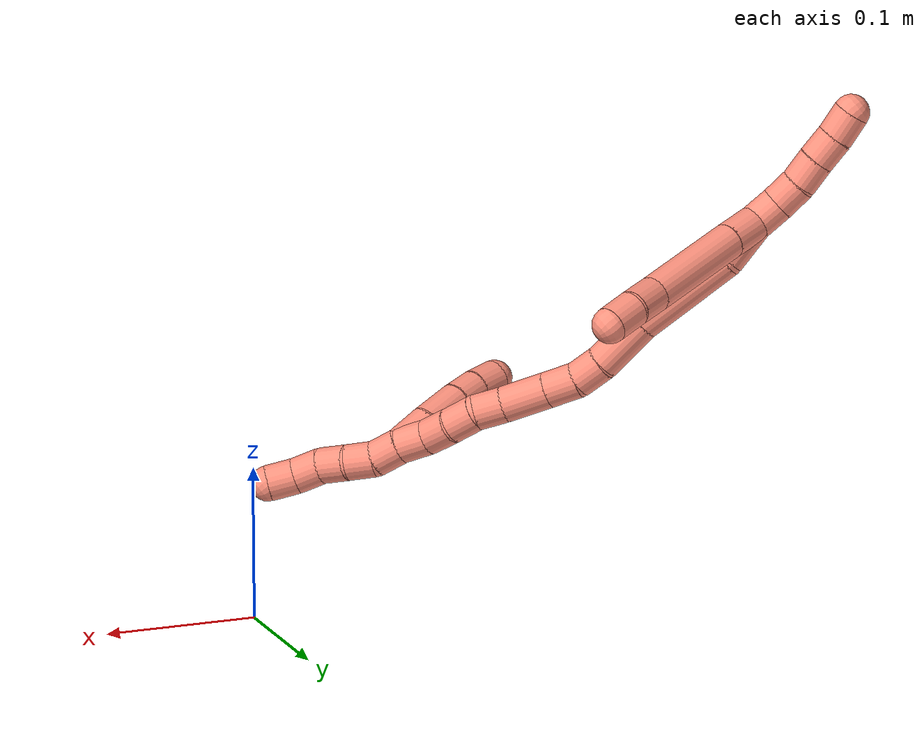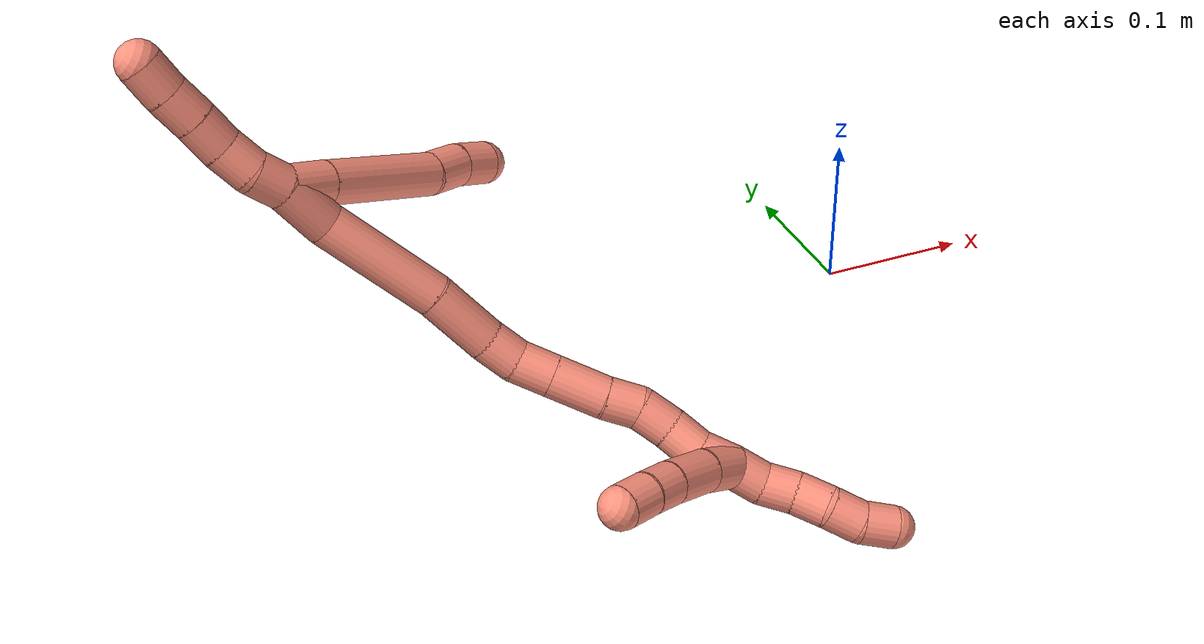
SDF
<sdf version="1.7">
 <world name="default">
  <model name="16">
   <static>0</static>
   <link name="16">
    <collision name="collision-cylinder-e_1_2_8">
     <pose>0.00412 0.005944 -0.011455 -2.66292 0.308987 -1.1361</pose>
     <geometry><cylinder><radius>0.0125</radius><length>0.027095</length></cylinder></geometry>
     <surface>
      <friction><ode><mu>1.16</mu><mu2>1.16</mu2><slip1>0</slip1><slip2>0</slip2></ode></friction>
      <contact><ode><kp>1e+06</kp><kd>1</kd><max_vel>0</max_vel><min_depth>0.001</min_depth></ode></contact>
     </surface>
    </collision>
    <visual name="visual-cylinder-e_1_2_8">
     <pose>0.00412 0.005944 -0.011455 -2.66292 0.308987 -1.1361</pose>
     <geometry><cylinder><radius>0.0125</radius><length>0.027095</length></cylinder></geometry>
     <material><ambient>1 0.576471 0.494118 1</ambient></material>
    </visual>
    <collision name="collision-cylinder-e_2_8_9">
     <pose>0.01889 0.028177 -0.055635 -2.67975 0.283522 -1.09112</pose>
     <geometry><cylinder><radius>0.0125</radius><length>0.076147</length></cylinder></geometry>
     <surface>
      <friction><ode><mu>1.16</mu><mu2>1.16</mu2><slip1>0</slip1><slip2>0</slip2></ode></friction>
      <contact><ode><kp>1e+06</kp><kd>1</kd><max_vel>0</max_vel><min_depth>0.001</min_depth></ode></contact>
     </surface>
    </collision>
    <visual name="visual-cylinder-e_2_8_9">
     <pose>0.01889 0.028177 -0.055635 -2.67975 0.283522 -1.09112</pose>
     <geometry><cylinder><radius>0.0125</radius><length>0.076147</length></cylinder></geometry>
     <material><ambient>1 0.576471 0.494118 1</ambient></material>
    </visual>
    <collision name="collision-cylinder-e_3_9_10">
     <pose>0.033789 0.051262 -0.097496 -2.50204 0.357065 -0.997915</pose>
     <geometry><cylinder><radius>0.0125</radius><length>0.024308</length></cylinder></geometry>
     <surface>
      <friction><ode><mu>1.16</mu><mu2>1.16</mu2><slip1>0</slip1><slip2>0</slip2></ode></friction>
      <contact><ode><kp>1e+06</kp><kd>1</kd><max_vel>0</max_vel><min_depth>0.001</min_depth></ode></contact>
     </surface>
    </collision>
    <visual name="visual-cylinder-e_3_9_10">
     <pose>0.033789 0.051262 -0.097496 -2.50204 0.357065 -0.997915</pose>
     <geometry><cylinder><radius>0.0125</radius><length>0.024308</length></cylinder></geometry>
     <material><ambient>1 0.576471 0.494118 1</ambient></material>
    </visual>
    <collision name="collision-cylinder-e_4_10_6">
     <pose>0.04111 0.062992 -0.116235 -2.66701 0.2773 -1.04667</pose>
     <geometry><cylinder><radius>0.0125</radius><length>0.02245</length></cylinder></geometry>
     <surface>
      <friction><ode><mu>1.16</mu><mu2>1.16</mu2><slip1>0</slip1><slip2>0</slip2></ode></friction>
      <contact><ode><kp>1e+06</kp><kd>1</kd><max_vel>0</max_vel><min_depth>0.001</min_depth></ode></contact>
     </surface>
    </collision>
    <visual name="visual-cylinder-e_4_10_6">
     <pose>0.04111 0.062992 -0.116235 -2.66701 0.2773 -1.04667</pose>
     <geometry><cylinder><radius>0.0125</radius><length>0.02245</length></cylinder></geometry>
     <material><ambient>1 0.576471 0.494118 1</ambient></material>
    </visual>
    <collision name="collision-cylinder-e_1_2_11">
     <pose>0.000246 0.000154 0.009996 -0.015448 0.024648 -0.00019</pose>
     <geometry><cylinder><radius>0.0125</radius><length>0.02</length></cylinder></geometry>
     <surface>
      <friction><ode><mu>1.16</mu><mu2>1.16</mu2><slip1>0</slip1><slip2>0</slip2></ode></friction>
      <contact><ode><kp>1e+06</kp><kd>1</kd><max_vel>0</max_vel><min_depth>0.001</min_depth></ode></contact>
     </surface>
    </collision>
    <visual name="visual-cylinder-e_1_2_11">
     <pose>0.000246 0.000154 0.009996 -0.015448 0.024648 -0.00019</pose>
     <geometry><cylinder><radius>0.0125</radius><length>0.02</length></cylinder></geometry>
     <material><ambient>1 0.576471 0.494118 1</ambient></material>
    </visual>
    <collision name="collision-cylinder-e_2_11_12">
     <pose>0.002383 0.002566 0.029548 -0.231975 0.190183 -0.022224</pose>
     <geometry><cylinder><radius>0.0125</radius><length>0.02</length></cylinder></geometry>
     <surface>
      <friction><ode><mu>1.16</mu><mu2>1.16</mu2><slip1>0</slip1><slip2>0</slip2></ode></friction>
      <contact><ode><kp>1e+06</kp><kd>1</kd><max_vel>0</max_vel><min_depth>0.001</min_depth></ode></contact>
     </surface>
    </collision>
    <visual name="visual-cylinder-e_2_11_12">
     <pose>0.002383 0.002566 0.029548 -0.231975 0.190183 -0.022224</pose>
     <geometry><cylinder><radius>0.0125</radius><length>0.02</length></cylinder></geometry>
     <material><ambient>1 0.576471 0.494118 1</ambient></material>
    </visual>
    <collision name="collision-cylinder-e_3_12_13">
     <pose>0.007531 0.006063 0.048478 -0.131388 0.331774 -0.022029</pose>
     <geometry><cylinder><radius>0.0125</radius><length>0.02</length></cylinder></geometry>
     <surface>
      <friction><ode><mu>1.16</mu><mu2>1.16</mu2><slip1>0</slip1><slip2>0</slip2></ode></friction>
      <contact><ode><kp>1e+06</kp><kd>1</kd><max_vel>0</max_vel><min_depth>0.001</min_depth></ode></contact>
     </surface>
    </collision>
    <visual name="visual-cylinder-e_3_12_13">
     <pose>0.007531 0.006063 0.048478 -0.131388 0.331774 -0.022029</pose>
     <geometry><cylinder><radius>0.0125</radius><length>0.02</length></cylinder></geometry>
     <material><ambient>1 0.576471 0.494118 1</ambient></material>
    </visual>
    <collision name="collision-cylinder-e_4_13_14">
     <pose>0.013572 0.00861 0.067366 -0.136705 0.282157 -0.019445</pose>
     <geometry><cylinder><radius>0.0125</radius><length>0.02</length></cylinder></geometry>
     <surface>
      <friction><ode><mu>1.16</mu><mu2>1.16</mu2><slip1>0</slip1><slip2>0</slip2></ode></friction>
      <contact><ode><kp>1e+06</kp><kd>1</kd><max_vel>0</max_vel><min_depth>0.001</min_depth></ode></contact>
     </surface>
    </collision>
    <visual name="visual-cylinder-e_4_13_14">
     <pose>0.013572 0.00861 0.067366 -0.136705 0.282157 -0.019445</pose>
     <geometry><cylinder><radius>0.0125</radius><length>0.02</length></cylinder></geometry>
     <material><ambient>1 0.576471 0.494118 1</ambient></material>
    </visual>
    <collision name="collision-cylinder-e_5_14_5">
     <pose>0.020088 0.01106 0.086088 -0.123235 0.382427 -0.023885</pose>
     <geometry><cylinder><radius>0.0125</radius><length>0.02</length></cylinder></geometry>
     <surface>
      <friction><ode><mu>1.16</mu><mu2>1.16</mu2><slip1>0</slip1><slip2>0</slip2></ode></friction>
      <contact><ode><kp>1e+06</kp><kd>1</kd><max_vel>0</max_vel><min_depth>0.001</min_depth></ode></contact>
     </surface>
    </collision>
    <visual name="visual-cylinder-e_5_14_5">
     <pose>0.020088 0.01106 0.086088 -0.123235 0.382427 -0.023885</pose>
     <geometry><cylinder><radius>0.0125</radius><length>0.02</length></cylinder></geometry>
     <material><ambient>1 0.576471 0.494118 1</ambient></material>
    </visual>
    <collision name="collision-cylinder-e_1_2_15">
     <pose>-0.004107 -0.000817 -0.014912 3.08686 -0.268384 -2.74154</pose>
     <geometry><cylinder><radius>0.0125</radius><length>0.030979</length></cylinder></geometry>
     <surface>
      <friction><ode><mu>1.16</mu><mu2>1.16</mu2><slip1>0</slip1><slip2>0</slip2></ode></friction>
      <contact><ode><kp>1e+06</kp><kd>1</kd><max_vel>0</max_vel><min_depth>0.001</min_depth></ode></contact>
     </surface>
    </collision>
    <visual name="visual-cylinder-e_1_2_15">
     <pose>-0.004107 -0.000817 -0.014912 3.08686 -0.268384 -2.74154</pose>
     <geometry><cylinder><radius>0.0125</radius><length>0.030979</length></cylinder></geometry>
     <material><ambient>1 0.576471 0.494118 1</ambient></material>
    </visual>
    <collision name="collision-cylinder-e_2_15_16">
     <pose>-0.011152 -0.011101 -0.064196 2.87283 -0.082196 -0.590532</pose>
     <geometry><cylinder><radius>0.0125</radius><length>0.071543</length></cylinder></geometry>
     <surface>
      <friction><ode><mu>1.16</mu><mu2>1.16</mu2><slip1>0</slip1><slip2>0</slip2></ode></friction>
      <contact><ode><kp>1e+06</kp><kd>1</kd><max_vel>0</max_vel><min_depth>0.001</min_depth></ode></contact>
     </surface>
    </collision>
    <visual name="visual-cylinder-e_2_15_16">
     <pose>-0.011152 -0.011101 -0.064196 2.87283 -0.082196 -0.590532</pose>
     <geometry><cylinder><radius>0.0125</radius><length>0.071543</length></cylinder></geometry>
     <material><ambient>1 0.576471 0.494118 1</ambient></material>
    </visual>
    <collision name="collision-cylinder-e_3_16_17">
     <pose>-0.018251 -0.025081 -0.117327 2.90551 -0.212455 -1.46466</pose>
     <geometry><cylinder><radius>0.0125</radius><length>0.039479</length></cylinder></geometry>
     <surface>
      <friction><ode><mu>1.16</mu><mu2>1.16</mu2><slip1>0</slip1><slip2>0</slip2></ode></friction>
      <contact><ode><kp>1e+06</kp><kd>1</kd><max_vel>0</max_vel><min_depth>0.001</min_depth></ode></contact>
     </surface>
    </collision>
    <visual name="visual-cylinder-e_3_16_17">
     <pose>-0.018251 -0.025081 -0.117327 2.90551 -0.212455 -1.46466</pose>
     <geometry><cylinder><radius>0.0125</radius><length>0.039479</length></cylinder></geometry>
     <material><ambient>1 0.576471 0.494118 1</ambient></material>
    </visual>
    <collision name="collision-cylinder-e_4_17_18">
     <pose>-0.023432 -0.033213 -0.145872 2.78731 -0.097397 -0.531611</pose>
     <geometry><cylinder><radius>0.0125</radius><length>0.020963</length></cylinder></geometry>
     <surface>
      <friction><ode><mu>1.16</mu><mu2>1.16</mu2><slip1>0</slip1><slip2>0</slip2></ode></friction>
      <contact><ode><kp>1e+06</kp><kd>1</kd><max_vel>0</max_vel><min_depth>0.001</min_depth></ode></contact>
     </surface>
    </collision>
    <visual name="visual-cylinder-e_4_17_18">
     <pose>-0.023432 -0.033213 -0.145872 2.78731 -0.097397 -0.531611</pose>
     <geometry><cylinder><radius>0.0125</radius><length>0.020963</length></cylinder></geometry>
     <material><ambient>1 0.576471 0.494118 1</ambient></material>
    </visual>
    <collision name="collision-cylinder-e_5_18_19">
     <pose>-0.02259 -0.041684 -0.165414 2.68017 0.169228 0.693033</pose>
     <geometry><cylinder><radius>0.0125</radius><length>0.022113</length></cylinder></geometry>
     <surface>
      <friction><ode><mu>1.16</mu><mu2>1.16</mu2><slip1>0</slip1><slip2>0</slip2></ode></friction>
      <contact><ode><kp>1e+06</kp><kd>1</kd><max_vel>0</max_vel><min_depth>0.001</min_depth></ode></contact>
     </surface>
    </collision>
    <visual name="visual-cylinder-e_5_18_19">
     <pose>-0.02259 -0.041684 -0.165414 2.68017 0.169228 0.693033</pose>
     <geometry><cylinder><radius>0.0125</radius><length>0.022113</length></cylinder></geometry>
     <material><ambient>1 0.576471 0.494118 1</ambient></material>
    </visual>
    <collision name="collision-cylinder-e_6_19_20">
     <pose>-0.018008 -0.053586 -0.18937 2.68068 0.169934 0.696442</pose>
     <geometry><cylinder><radius>0.0125</radius><length>0.032165</length></cylinder></geometry>
     <surface>
      <friction><ode><mu>1.16</mu><mu2>1.16</mu2><slip1>0</slip1><slip2>0</slip2></ode></friction>
      <contact><ode><kp>1e+06</kp><kd>1</kd><max_vel>0</max_vel><min_depth>0.001</min_depth></ode></contact>
     </surface>
    </collision>
    <visual name="visual-cylinder-e_6_19_20">
     <pose>-0.018008 -0.053586 -0.18937 2.68068 0.169934 0.696442</pose>
     <geometry><cylinder><radius>0.0125</radius><length>0.032165</length></cylinder></geometry>
     <material><ambient>1 0.576471 0.494118 1</ambient></material>
    </visual>
    <collision name="collision-cylinder-e_7_20_21">
     <pose>-0.012628 -0.064365 -0.212657 2.75232 0.264372 1.18678</pose>
     <geometry><cylinder><radius>0.0125</radius><length>0.020359</length></cylinder></geometry>
     <surface>
      <friction><ode><mu>1.16</mu><mu2>1.16</mu2><slip1>0</slip1><slip2>0</slip2></ode></friction>
      <contact><ode><kp>1e+06</kp><kd>1</kd><max_vel>0</max_vel><min_depth>0.001</min_depth></ode></contact>
     </surface>
    </collision>
    <visual name="visual-cylinder-e_7_20_21">
     <pose>-0.012628 -0.064365 -0.212657 2.75232 0.264372 1.18678</pose>
     <geometry><cylinder><radius>0.0125</radius><length>0.020359</length></cylinder></geometry>
     <material><ambient>1 0.576471 0.494118 1</ambient></material>
    </visual>
    <collision name="collision-cylinder-e_8_21_22">
     <pose>-0.010274 -0.073107 -0.230802 2.63593 -0.029543 -0.114232</pose>
     <geometry><cylinder><radius>0.0125</radius><length>0.020707</length></cylinder></geometry>
     <surface>
      <friction><ode><mu>1.16</mu><mu2>1.16</mu2><slip1>0</slip1><slip2>0</slip2></ode></friction>
      <contact><ode><kp>1e+06</kp><kd>1</kd><max_vel>0</max_vel><min_depth>0.001</min_depth></ode></contact>
     </surface>
    </collision>
    <visual name="visual-cylinder-e_8_21_22">
     <pose>-0.010274 -0.073107 -0.230802 2.63593 -0.029543 -0.114232</pose>
     <geometry><cylinder><radius>0.0125</radius><length>0.020707</length></cylinder></geometry>
     <material><ambient>1 0.576471 0.494118 1</ambient></material>
    </visual>
    <collision name="collision-cylinder-e_9_22_23">
     <pose>-0.011346 -0.084324 -0.247997 2.49047 -0.074769 -0.220692</pose>
     <geometry><cylinder><radius>0.0125</radius><length>0.02053</length></cylinder></geometry>
     <surface>
      <friction><ode><mu>1.16</mu><mu2>1.16</mu2><slip1>0</slip1><slip2>0</slip2></ode></friction>
      <contact><ode><kp>1e+06</kp><kd>1</kd><max_vel>0</max_vel><min_depth>0.001</min_depth></ode></contact>
     </surface>
    </collision>
    <visual name="visual-cylinder-e_9_22_23">
     <pose>-0.011346 -0.084324 -0.247997 2.49047 -0.074769 -0.220692</pose>
     <geometry><cylinder><radius>0.0125</radius><length>0.02053</length></cylinder></geometry>
     <material><ambient>1 0.576471 0.494118 1</ambient></material>
    </visual>
    <collision name="collision-cylinder-e_10_23_1">
     <pose>-0.010427 -0.095577 -0.265284 2.6371 0.16003 0.603254</pose>
     <geometry><cylinder><radius>0.0125</radius><length>0.021163</length></cylinder></geometry>
     <surface>
      <friction><ode><mu>1.16</mu><mu2>1.16</mu2><slip1>0</slip1><slip2>0</slip2></ode></friction>
      <contact><ode><kp>1e+06</kp><kd>1</kd><max_vel>0</max_vel><min_depth>0.001</min_depth></ode></contact>
     </surface>
    </collision>
    <visual name="visual-cylinder-e_10_23_1">
     <pose>-0.010427 -0.095577 -0.265284 2.6371 0.16003 0.603254</pose>
     <geometry><cylinder><radius>0.0125</radius><length>0.021163</length></cylinder></geometry>
     <material><ambient>1 0.576471 0.494118 1</ambient></material>
    </visual>
    <collision name="collision-cylinder-e_1_1_24">
     <pose>-0.008529 -0.10452 -0.283637 2.74151 0.021218 0.10456</pose>
     <geometry><cylinder><radius>0.0125</radius><length>0.02</length></cylinder></geometry>
     <surface>
      <friction><ode><mu>1.16</mu><mu2>1.16</mu2><slip1>0</slip1><slip2>0</slip2></ode></friction>
      <contact><ode><kp>1e+06</kp><kd>1</kd><max_vel>0</max_vel><min_depth>0.001</min_depth></ode></contact>
     </surface>
    </collision>
    <visual name="visual-cylinder-e_1_1_24">
     <pose>-0.008529 -0.10452 -0.283637 2.74151 0.021218 0.10456</pose>
     <geometry><cylinder><radius>0.0125</radius><length>0.02</length></cylinder></geometry>
     <material><ambient>1 0.576471 0.494118 1</ambient></material>
    </visual>
    <collision name="collision-cylinder-e_2_24_25">
     <pose>-0.005127 -0.113473 -0.30086 2.57851 0.324681 1.03052</pose>
     <geometry><cylinder><radius>0.0125</radius><length>0.02</length></cylinder></geometry>
     <surface>
      <friction><ode><mu>1.16</mu><mu2>1.16</mu2><slip1>0</slip1><slip2>0</slip2></ode></friction>
      <contact><ode><kp>1e+06</kp><kd>1</kd><max_vel>0</max_vel><min_depth>0.001</min_depth></ode></contact>
     </surface>
    </collision>
    <visual name="visual-cylinder-e_2_24_25">
     <pose>-0.005127 -0.113473 -0.30086 2.57851 0.324681 1.03052</pose>
     <geometry><cylinder><radius>0.0125</radius><length>0.02</length></cylinder></geometry>
     <material><ambient>1 0.576471 0.494118 1</ambient></material>
    </visual>
    <collision name="collision-cylinder-e_3_25_26">
     <pose>0.0003 -0.124983 -0.316181 2.41839 0.225607 0.582012</pose>
     <geometry><cylinder><radius>0.0125</radius><length>0.02</length></cylinder></geometry>
     <surface>
      <friction><ode><mu>1.16</mu><mu2>1.16</mu2><slip1>0</slip1><slip2>0</slip2></ode></friction>
      <contact><ode><kp>1e+06</kp><kd>1</kd><max_vel>0</max_vel><min_depth>0.001</min_depth></ode></contact>
     </surface>
    </collision>
    <visual name="visual-cylinder-e_3_25_26">
     <pose>0.0003 -0.124983 -0.316181 2.41839 0.225607 0.582012</pose>
     <geometry><cylinder><radius>0.0125</radius><length>0.02</length></cylinder></geometry>
     <material><ambient>1 0.576471 0.494118 1</ambient></material>
    </visual>
    <collision name="collision-cylinder-e_4_26_27">
     <pose>0.003662 -0.135803 -0.332412 2.68626 0.112701 0.477661</pose>
     <geometry><cylinder><radius>0.0125</radius><length>0.02</length></cylinder></geometry>
     <surface>
      <friction><ode><mu>1.16</mu><mu2>1.16</mu2><slip1>0</slip1><slip2>0</slip2></ode></friction>
      <contact><ode><kp>1e+06</kp><kd>1</kd><max_vel>0</max_vel><min_depth>0.001</min_depth></ode></contact>
     </surface>
    </collision>
    <visual name="visual-cylinder-e_4_26_27">
     <pose>0.003662 -0.135803 -0.332412 2.68626 0.112701 0.477661</pose>
     <geometry><cylinder><radius>0.0125</radius><length>0.02</length></cylinder></geometry>
     <material><ambient>1 0.576471 0.494118 1</ambient></material>
    </visual>
    <collision name="collision-cylinder-e_5_27_4">
     <pose>0.008234 -0.142671 -0.350385 2.87221 0.351945 1.83917</pose>
     <geometry><cylinder><radius>0.0125</radius><length>0.02</length></cylinder></geometry>
     <surface>
      <friction><ode><mu>1.16</mu><mu2>1.16</mu2><slip1>0</slip1><slip2>0</slip2></ode></friction>
      <contact><ode><kp>1e+06</kp><kd>1</kd><max_vel>0</max_vel><min_depth>0.001</min_depth></ode></contact>
     </surface>
    </collision>
    <visual name="visual-cylinder-e_5_27_4">
     <pose>0.008234 -0.142671 -0.350385 2.87221 0.351945 1.83917</pose>
     <geometry><cylinder><radius>0.0125</radius><length>0.02</length></cylinder></geometry>
     <material><ambient>1 0.576471 0.494118 1</ambient></material>
    </visual>
    <collision name="collision-cylinder-e_1_1_28">
     <pose>-0.011315 -0.106287 -0.262432 0.440858 -0.19166 -0.04307</pose>
     <geometry><cylinder><radius>0.0125</radius><length>0.027026</length></cylinder></geometry>
     <surface>
      <friction><ode><mu>1.16</mu><mu2>1.16</mu2><slip1>0</slip1><slip2>0</slip2></ode></friction>
      <contact><ode><kp>1e+06</kp><kd>1</kd><max_vel>0</max_vel><min_depth>0.001</min_depth></ode></contact>
     </surface>
    </collision>
    <visual name="visual-cylinder-e_1_1_28">
     <pose>-0.011315 -0.106287 -0.262432 0.440858 -0.19166 -0.04307</pose>
     <geometry><cylinder><radius>0.0125</radius><length>0.027026</length></cylinder></geometry>
     <material><ambient>1 0.576471 0.494118 1</ambient></material>
    </visual>
    <collision name="collision-cylinder-e_2_28_29">
     <pose>-0.018101 -0.119678 -0.236972 0.521223 -0.26494 -0.071039</pose>
     <geometry><cylinder><radius>0.0125</radius><length>0.032171</length></cylinder></geometry>
     <surface>
      <friction><ode><mu>1.16</mu><mu2>1.16</mu2><slip1>0</slip1><slip2>0</slip2></ode></friction>
      <contact><ode><kp>1e+06</kp><kd>1</kd><max_vel>0</max_vel><min_depth>0.001</min_depth></ode></contact>
     </surface>
    </collision>
    <visual name="visual-cylinder-e_2_28_29">
     <pose>-0.018101 -0.119678 -0.236972 0.521223 -0.26494 -0.071039</pose>
     <geometry><cylinder><radius>0.0125</radius><length>0.032171</length></cylinder></geometry>
     <material><ambient>1 0.576471 0.494118 1</ambient></material>
    </visual>
    <collision name="collision-cylinder-e_3_29_30">
     <pose>-0.025639 -0.13248 -0.215304 0.553655 -0.332006 -0.095135</pose>
     <geometry><cylinder><radius>0.0125</radius><length>0.020406</length></cylinder></geometry>
     <surface>
      <friction><ode><mu>1.16</mu><mu2>1.16</mu2><slip1>0</slip1><slip2>0</slip2></ode></friction>
      <contact><ode><kp>1e+06</kp><kd>1</kd><max_vel>0</max_vel><min_depth>0.001</min_depth></ode></contact>
     </surface>
    </collision>
    <visual name="visual-cylinder-e_3_29_30">
     <pose>-0.025639 -0.13248 -0.215304 0.553655 -0.332006 -0.095135</pose>
     <geometry><cylinder><radius>0.0125</radius><length>0.020406</length></cylinder></geometry>
     <material><ambient>1 0.576471 0.494118 1</ambient></material>
    </visual>
    <collision name="collision-cylinder-e_4_30_3">
     <pose>-0.033201 -0.142282 -0.199119 0.535141 -0.428396 -0.119131</pose>
     <geometry><cylinder><radius>0.0125</radius><length>0.020397</length></cylinder></geometry>
     <surface>
      <friction><ode><mu>1.16</mu><mu2>1.16</mu2><slip1>0</slip1><slip2>0</slip2></ode></friction>
      <contact><ode><kp>1e+06</kp><kd>1</kd><max_vel>0</max_vel><min_depth>0.001</min_depth></ode></contact>
     </surface>
    </collision>
    <visual name="visual-cylinder-e_4_30_3">
     <pose>-0.033201 -0.142282 -0.199119 0.535141 -0.428396 -0.119131</pose>
     <geometry><cylinder><radius>0.0125</radius><length>0.020397</length></cylinder></geometry>
     <material><ambient>1 0.576471 0.494118 1</ambient></material>
    </visual>
    <collision name="collision-sphere-3">
     <pose>-0.037437 -0.147013 -0.191139 0 -0 0</pose>
     <geometry><sphere><radius>0.0125</radius></sphere></geometry>
     <surface>
      <friction><ode><mu>1.16</mu><mu2>1.16</mu2><slip1>0</slip1><slip2>0</slip2></ode></friction>
      <contact><ode><kp>1e+06</kp><kd>1</kd><max_vel>0</max_vel><min_depth>0.001</min_depth></ode></contact>
     </surface>
    </collision>
    <visual name="visual-sphere-3">
     <pose>-0.037437 -0.147013 -0.191139 0 -0 0</pose>
     <geometry><sphere><radius>0.0125</radius></sphere></geometry>
     <material><ambient>1 0.576471 0.494118 1</ambient></material>
    </visual>
    <collision name="collision-sphere-30">
     <pose>-0.028964 -0.137551 -0.207099 0 -0 0</pose>
     <geometry><sphere><radius>0.0125</radius></sphere></geometry>
     <surface>
      <friction><ode><mu>1.16</mu><mu2>1.16</mu2><slip1>0</slip1><slip2>0</slip2></ode></friction>
      <contact><ode><kp>1e+06</kp><kd>1</kd><max_vel>0</max_vel><min_depth>0.001</min_depth></ode></contact>
     </surface>
    </collision>
    <visual name="visual-sphere-30">
     <pose>-0.028964 -0.137551 -0.207099 0 -0 0</pose>
     <geometry><sphere><radius>0.0125</radius></sphere></geometry>
     <material><ambient>1 0.576471 0.494118 1</ambient></material>
    </visual>
    <collision name="collision-sphere-29">
     <pose>-0.022313 -0.127408 -0.223509 0 -0 0</pose>
     <geometry><sphere><radius>0.0125</radius></sphere></geometry>
     <surface>
      <friction><ode><mu>1.16</mu><mu2>1.16</mu2><slip1>0</slip1><slip2>0</slip2></ode></friction>
      <contact><ode><kp>1e+06</kp><kd>1</kd><max_vel>0</max_vel><min_depth>0.001</min_depth></ode></contact>
     </surface>
    </collision>
    <visual name="visual-sphere-29">
     <pose>-0.022313 -0.127408 -0.223509 0 -0 0</pose>
     <geometry><sphere><radius>0.0125</radius></sphere></geometry>
     <material><ambient>1 0.576471 0.494118 1</ambient></material>
    </visual>
    <collision name="collision-sphere-28">
     <pose>-0.013889 -0.111948 -0.250434 0 -0 0</pose>
     <geometry><sphere><radius>0.0125</radius></sphere></geometry>
     <surface>
      <friction><ode><mu>1.16</mu><mu2>1.16</mu2><slip1>0</slip1><slip2>0</slip2></ode></friction>
      <contact><ode><kp>1e+06</kp><kd>1</kd><max_vel>0</max_vel><min_depth>0.001</min_depth></ode></contact>
     </surface>
    </collision>
    <visual name="visual-sphere-28">
     <pose>-0.013889 -0.111948 -0.250434 0 -0 0</pose>
     <geometry><sphere><radius>0.0125</radius></sphere></geometry>
     <material><ambient>1 0.576471 0.494118 1</ambient></material>
    </visual>
    <collision name="collision-sphere-4">
     <pose>0.011681 -0.145169 -0.359433 0 -0 0</pose>
     <geometry><sphere><radius>0.0125</radius></sphere></geometry>
     <surface>
      <friction><ode><mu>1.16</mu><mu2>1.16</mu2><slip1>0</slip1><slip2>0</slip2></ode></friction>
      <contact><ode><kp>1e+06</kp><kd>1</kd><max_vel>0</max_vel><min_depth>0.001</min_depth></ode></contact>
     </surface>
    </collision>
    <visual name="visual-sphere-4">
     <pose>0.011681 -0.145169 -0.359433 0 -0 0</pose>
     <geometry><sphere><radius>0.0125</radius></sphere></geometry>
     <material><ambient>1 0.576471 0.494118 1</ambient></material>
    </visual>
    <collision name="collision-sphere-27">
     <pose>0.004787 -0.140172 -0.341336 0 -0 0</pose>
     <geometry><sphere><radius>0.0125</radius></sphere></geometry>
     <surface>
      <friction><ode><mu>1.16</mu><mu2>1.16</mu2><slip1>0</slip1><slip2>0</slip2></ode></friction>
      <contact><ode><kp>1e+06</kp><kd>1</kd><max_vel>0</max_vel><min_depth>0.001</min_depth></ode></contact>
     </surface>
    </collision>
    <visual name="visual-sphere-27">
     <pose>0.004787 -0.140172 -0.341336 0 -0 0</pose>
     <geometry><sphere><radius>0.0125</radius></sphere></geometry>
     <material><ambient>1 0.576471 0.494118 1</ambient></material>
    </visual>
    <collision name="collision-sphere-26">
     <pose>0.002537 -0.131433 -0.323488 0 -0 0</pose>
     <geometry><sphere><radius>0.0125</radius></sphere></geometry>
     <surface>
      <friction><ode><mu>1.16</mu><mu2>1.16</mu2><slip1>0</slip1><slip2>0</slip2></ode></friction>
      <contact><ode><kp>1e+06</kp><kd>1</kd><max_vel>0</max_vel><min_depth>0.001</min_depth></ode></contact>
     </surface>
    </collision>
    <visual name="visual-sphere-26">
     <pose>0.002537 -0.131433 -0.323488 0 -0 0</pose>
     <geometry><sphere><radius>0.0125</radius></sphere></geometry>
     <material><ambient>1 0.576471 0.494118 1</ambient></material>
    </visual>
    <collision name="collision-sphere-25">
     <pose>-0.001937 -0.118532 -0.308874 0 -0 0</pose>
     <geometry><sphere><radius>0.0125</radius></sphere></geometry>
     <surface>
      <friction><ode><mu>1.16</mu><mu2>1.16</mu2><slip1>0</slip1><slip2>0</slip2></ode></friction>
      <contact><ode><kp>1e+06</kp><kd>1</kd><max_vel>0</max_vel><min_depth>0.001</min_depth></ode></contact>
     </surface>
    </collision>
    <visual name="visual-sphere-25">
     <pose>-0.001937 -0.118532 -0.308874 0 -0 0</pose>
     <geometry><sphere><radius>0.0125</radius></sphere></geometry>
     <material><ambient>1 0.576471 0.494118 1</ambient></material>
    </visual>
    <collision name="collision-sphere-24">
     <pose>-0.008317 -0.108414 -0.292845 0 -0 0</pose>
     <geometry><sphere><radius>0.0125</radius></sphere></geometry>
     <surface>
      <friction><ode><mu>1.16</mu><mu2>1.16</mu2><slip1>0</slip1><slip2>0</slip2></ode></friction>
      <contact><ode><kp>1e+06</kp><kd>1</kd><max_vel>0</max_vel><min_depth>0.001</min_depth></ode></contact>
     </surface>
    </collision>
    <visual name="visual-sphere-24">
     <pose>-0.008317 -0.108414 -0.292845 0 -0 0</pose>
     <geometry><sphere><radius>0.0125</radius></sphere></geometry>
     <material><ambient>1 0.576471 0.494118 1</ambient></material>
    </visual>
    <collision name="collision-sphere-1">
     <pose>-0.008741 -0.100626 -0.274429 0 -0 0</pose>
     <geometry><sphere><radius>0.0125</radius></sphere></geometry>
     <surface>
      <friction><ode><mu>1.16</mu><mu2>1.16</mu2><slip1>0</slip1><slip2>0</slip2></ode></friction>
      <contact><ode><kp>1e+06</kp><kd>1</kd><max_vel>0</max_vel><min_depth>0.001</min_depth></ode></contact>
     </surface>
    </collision>
    <visual name="visual-sphere-1">
     <pose>-0.008741 -0.100626 -0.274429 0 -0 0</pose>
     <geometry><sphere><radius>0.0125</radius></sphere></geometry>
     <material><ambient>1 0.576471 0.494118 1</ambient></material>
    </visual>
    <collision name="collision-sphere-23">
     <pose>-0.012113 -0.090528 -0.25614 0 -0 0</pose>
     <geometry><sphere><radius>0.0125</radius></sphere></geometry>
     <surface>
      <friction><ode><mu>1.16</mu><mu2>1.16</mu2><slip1>0</slip1><slip2>0</slip2></ode></friction>
      <contact><ode><kp>1e+06</kp><kd>1</kd><max_vel>0</max_vel><min_depth>0.001</min_depth></ode></contact>
     </surface>
    </collision>
    <visual name="visual-sphere-23">
     <pose>-0.012113 -0.090528 -0.25614 0 -0 0</pose>
     <geometry><sphere><radius>0.0125</radius></sphere></geometry>
     <material><ambient>1 0.576471 0.494118 1</ambient></material>
    </visual>
    <collision name="collision-sphere-22">
     <pose>-0.01058 -0.07812 -0.239855 0 -0 0</pose>
     <geometry><sphere><radius>0.0125</radius></sphere></geometry>
     <surface>
      <friction><ode><mu>1.16</mu><mu2>1.16</mu2><slip1>0</slip1><slip2>0</slip2></ode></friction>
      <contact><ode><kp>1e+06</kp><kd>1</kd><max_vel>0</max_vel><min_depth>0.001</min_depth></ode></contact>
     </surface>
    </collision>
    <visual name="visual-sphere-22">
     <pose>-0.01058 -0.07812 -0.239855 0 -0 0</pose>
     <geometry><sphere><radius>0.0125</radius></sphere></geometry>
     <material><ambient>1 0.576471 0.494118 1</ambient></material>
    </visual>
    <collision name="collision-sphere-21">
     <pose>-0.009968 -0.068094 -0.221748 0 -0 0</pose>
     <geometry><sphere><radius>0.0125</radius></sphere></geometry>
     <surface>
      <friction><ode><mu>1.16</mu><mu2>1.16</mu2><slip1>0</slip1><slip2>0</slip2></ode></friction>
      <contact><ode><kp>1e+06</kp><kd>1</kd><max_vel>0</max_vel><min_depth>0.001</min_depth></ode></contact>
     </surface>
    </collision>
    <visual name="visual-sphere-21">
     <pose>-0.009968 -0.068094 -0.221748 0 -0 0</pose>
     <geometry><sphere><radius>0.0125</radius></sphere></geometry>
     <material><ambient>1 0.576471 0.494118 1</ambient></material>
    </visual>
    <collision name="collision-sphere-11">
     <pose>0.000493 0.000309 0.019992 0 -0 0</pose>
     <geometry><sphere><radius>0.0125</radius></sphere></geometry>
     <surface>
      <friction><ode><mu>1.16</mu><mu2>1.16</mu2><slip1>0</slip1><slip2>0</slip2></ode></friction>
      <contact><ode><kp>1e+06</kp><kd>1</kd><max_vel>0</max_vel><min_depth>0.001</min_depth></ode></contact>
     </surface>
    </collision>
    <visual name="visual-sphere-11">
     <pose>0.000493 0.000309 0.019992 0 -0 0</pose>
     <geometry><sphere><radius>0.0125</radius></sphere></geometry>
     <material><ambient>1 0.576471 0.494118 1</ambient></material>
    </visual>
    <collision name="collision-sphere-6">
     <pose>0.044183 0.067925 -0.125838 0 -0 0</pose>
     <geometry><sphere><radius>0.0125</radius></sphere></geometry>
     <surface>
      <friction><ode><mu>1.16</mu><mu2>1.16</mu2><slip1>0</slip1><slip2>0</slip2></ode></friction>
      <contact><ode><kp>1e+06</kp><kd>1</kd><max_vel>0</max_vel><min_depth>0.001</min_depth></ode></contact>
     </surface>
    </collision>
    <visual name="visual-sphere-6">
     <pose>0.044183 0.067925 -0.125838 0 -0 0</pose>
     <geometry><sphere><radius>0.0125</radius></sphere></geometry>
     <material><ambient>1 0.576471 0.494118 1</ambient></material>
    </visual>
    <collision name="collision-sphere-10">
     <pose>0.038037 0.058058 -0.106633 0 -0 0</pose>
     <geometry><sphere><radius>0.0125</radius></sphere></geometry>
     <surface>
      <friction><ode><mu>1.16</mu><mu2>1.16</mu2><slip1>0</slip1><slip2>0</slip2></ode></friction>
      <contact><ode><kp>1e+06</kp><kd>1</kd><max_vel>0</max_vel><min_depth>0.001</min_depth></ode></contact>
     </surface>
    </collision>
    <visual name="visual-sphere-10">
     <pose>0.038037 0.058058 -0.106633 0 -0 0</pose>
     <geometry><sphere><radius>0.0125</radius></sphere></geometry>
     <material><ambient>1 0.576471 0.494118 1</ambient></material>
    </visual>
    <collision name="collision-sphere-9">
     <pose>0.029541 0.044465 -0.088359 0 -0 0</pose>
     <geometry><sphere><radius>0.0125</radius></sphere></geometry>
     <surface>
      <friction><ode><mu>1.16</mu><mu2>1.16</mu2><slip1>0</slip1><slip2>0</slip2></ode></friction>
      <contact><ode><kp>1e+06</kp><kd>1</kd><max_vel>0</max_vel><min_depth>0.001</min_depth></ode></contact>
     </surface>
    </collision>
    <visual name="visual-sphere-9">
     <pose>0.029541 0.044465 -0.088359 0 -0 0</pose>
     <geometry><sphere><radius>0.0125</radius></sphere></geometry>
     <material><ambient>1 0.576471 0.494118 1</ambient></material>
    </visual>
    <collision name="collision-sphere-2">
     <geometry><sphere><radius>0.0125</radius></sphere></geometry>
     <surface>
      <friction><ode><mu>1.16</mu><mu2>1.16</mu2><slip1>0</slip1><slip2>0</slip2></ode></friction>
      <contact><ode><kp>1e+06</kp><kd>1</kd><max_vel>0</max_vel><min_depth>0.001</min_depth></ode></contact>
     </surface>
    </collision>
    <visual name="visual-sphere-2">
     <geometry><sphere><radius>0.0125</radius></sphere></geometry>
     <material><ambient>1 0.576471 0.494118 1</ambient></material>
    </visual>
    <collision name="collision-sphere-19">
     <pose>-0.020727 -0.046536 -0.175173 0 -0 0</pose>
     <geometry><sphere><radius>0.0125</radius></sphere></geometry>
     <surface>
      <friction><ode><mu>1.16</mu><mu2>1.16</mu2><slip1>0</slip1><slip2>0</slip2></ode></friction>
      <contact><ode><kp>1e+06</kp><kd>1</kd><max_vel>0</max_vel><min_depth>0.001</min_depth></ode></contact>
     </surface>
    </collision>
    <visual name="visual-sphere-19">
     <pose>-0.020727 -0.046536 -0.175173 0 -0 0</pose>
     <geometry><sphere><radius>0.0125</radius></sphere></geometry>
     <material><ambient>1 0.576471 0.494118 1</ambient></material>
    </visual>
    <collision name="collision-sphere-8">
     <pose>0.008239 0.011889 -0.02291 0 -0 0</pose>
     <geometry><sphere><radius>0.0125</radius></sphere></geometry>
     <surface>
      <friction><ode><mu>1.16</mu><mu2>1.16</mu2><slip1>0</slip1><slip2>0</slip2></ode></friction>
      <contact><ode><kp>1e+06</kp><kd>1</kd><max_vel>0</max_vel><min_depth>0.001</min_depth></ode></contact>
     </surface>
    </collision>
    <visual name="visual-sphere-8">
     <pose>0.008239 0.011889 -0.02291 0 -0 0</pose>
     <geometry><sphere><radius>0.0125</radius></sphere></geometry>
     <material><ambient>1 0.576471 0.494118 1</ambient></material>
    </visual>
    <collision name="collision-sphere-12">
     <pose>0.004274 0.004824 0.039105 0 -0 0</pose>
     <geometry><sphere><radius>0.0125</radius></sphere></geometry>
     <surface>
      <friction><ode><mu>1.16</mu><mu2>1.16</mu2><slip1>0</slip1><slip2>0</slip2></ode></friction>
      <contact><ode><kp>1e+06</kp><kd>1</kd><max_vel>0</max_vel><min_depth>0.001</min_depth></ode></contact>
     </surface>
    </collision>
    <visual name="visual-sphere-12">
     <pose>0.004274 0.004824 0.039105 0 -0 0</pose>
     <geometry><sphere><radius>0.0125</radius></sphere></geometry>
     <material><ambient>1 0.576471 0.494118 1</ambient></material>
    </visual>
    <collision name="collision-sphere-13">
     <pose>0.010788 0.007301 0.057851 0 -0 0</pose>
     <geometry><sphere><radius>0.0125</radius></sphere></geometry>
     <surface>
      <friction><ode><mu>1.16</mu><mu2>1.16</mu2><slip1>0</slip1><slip2>0</slip2></ode></friction>
      <contact><ode><kp>1e+06</kp><kd>1</kd><max_vel>0</max_vel><min_depth>0.001</min_depth></ode></contact>
     </surface>
    </collision>
    <visual name="visual-sphere-13">
     <pose>0.010788 0.007301 0.057851 0 -0 0</pose>
     <geometry><sphere><radius>0.0125</radius></sphere></geometry>
     <material><ambient>1 0.576471 0.494118 1</ambient></material>
    </visual>
    <collision name="collision-sphere-14">
     <pose>0.016357 0.009919 0.076881 0 -0 0</pose>
     <geometry><sphere><radius>0.0125</radius></sphere></geometry>
     <surface>
      <friction><ode><mu>1.16</mu><mu2>1.16</mu2><slip1>0</slip1><slip2>0</slip2></ode></friction>
      <contact><ode><kp>1e+06</kp><kd>1</kd><max_vel>0</max_vel><min_depth>0.001</min_depth></ode></contact>
     </surface>
    </collision>
    <visual name="visual-sphere-14">
     <pose>0.016357 0.009919 0.076881 0 -0 0</pose>
     <geometry><sphere><radius>0.0125</radius></sphere></geometry>
     <material><ambient>1 0.576471 0.494118 1</ambient></material>
    </visual>
    <collision name="collision-sphere-5">
     <pose>0.02382 0.0122 0.095296 0 -0 0</pose>
     <geometry><sphere><radius>0.0125</radius></sphere></geometry>
     <surface>
      <friction><ode><mu>1.16</mu><mu2>1.16</mu2><slip1>0</slip1><slip2>0</slip2></ode></friction>
      <contact><ode><kp>1e+06</kp><kd>1</kd><max_vel>0</max_vel><min_depth>0.001</min_depth></ode></contact>
     </surface>
    </collision>
    <visual name="visual-sphere-5">
     <pose>0.02382 0.0122 0.095296 0 -0 0</pose>
     <geometry><sphere><radius>0.0125</radius></sphere></geometry>
     <material><ambient>1 0.576471 0.494118 1</ambient></material>
    </visual>
    <collision name="collision-sphere-15">
     <pose>-0.008215 -0.001634 -0.029825 0 -0 0</pose>
     <geometry><sphere><radius>0.0125</radius></sphere></geometry>
     <surface>
      <friction><ode><mu>1.16</mu><mu2>1.16</mu2><slip1>0</slip1><slip2>0</slip2></ode></friction>
      <contact><ode><kp>1e+06</kp><kd>1</kd><max_vel>0</max_vel><min_depth>0.001</min_depth></ode></contact>
     </surface>
    </collision>
    <visual name="visual-sphere-15">
     <pose>-0.008215 -0.001634 -0.029825 0 -0 0</pose>
     <geometry><sphere><radius>0.0125</radius></sphere></geometry>
     <material><ambient>1 0.576471 0.494118 1</ambient></material>
    </visual>
    <collision name="collision-sphere-16">
     <pose>-0.014089 -0.020567 -0.098567 0 -0 0</pose>
     <geometry><sphere><radius>0.0125</radius></sphere></geometry>
     <surface>
      <friction><ode><mu>1.16</mu><mu2>1.16</mu2><slip1>0</slip1><slip2>0</slip2></ode></friction>
      <contact><ode><kp>1e+06</kp><kd>1</kd><max_vel>0</max_vel><min_depth>0.001</min_depth></ode></contact>
     </surface>
    </collision>
    <visual name="visual-sphere-16">
     <pose>-0.014089 -0.020567 -0.098567 0 -0 0</pose>
     <geometry><sphere><radius>0.0125</radius></sphere></geometry>
     <material><ambient>1 0.576471 0.494118 1</ambient></material>
    </visual>
    <collision name="collision-sphere-17">
     <pose>-0.022413 -0.029594 -0.136087 0 -0 0</pose>
     <geometry><sphere><radius>0.0125</radius></sphere></geometry>
     <surface>
      <friction><ode><mu>1.16</mu><mu2>1.16</mu2><slip1>0</slip1><slip2>0</slip2></ode></friction>
      <contact><ode><kp>1e+06</kp><kd>1</kd><max_vel>0</max_vel><min_depth>0.001</min_depth></ode></contact>
     </surface>
    </collision>
    <visual name="visual-sphere-17">
     <pose>-0.022413 -0.029594 -0.136087 0 -0 0</pose>
     <geometry><sphere><radius>0.0125</radius></sphere></geometry>
     <material><ambient>1 0.576471 0.494118 1</ambient></material>
    </visual>
    <collision name="collision-sphere-18">
     <pose>-0.024452 -0.036832 -0.155656 0 -0 0</pose>
     <geometry><sphere><radius>0.0125</radius></sphere></geometry>
     <surface>
      <friction><ode><mu>1.16</mu><mu2>1.16</mu2><slip1>0</slip1><slip2>0</slip2></ode></friction>
      <contact><ode><kp>1e+06</kp><kd>1</kd><max_vel>0</max_vel><min_depth>0.001</min_depth></ode></contact>
     </surface>
    </collision>
    <visual name="visual-sphere-18">
     <pose>-0.024452 -0.036832 -0.155656 0 -0 0</pose>
     <geometry><sphere><radius>0.0125</radius></sphere></geometry>
     <material><ambient>1 0.576471 0.494118 1</ambient></material>
    </visual>
    <collision name="collision-sphere-20">
     <pose>-0.015288 -0.060636 -0.203567 0 -0 0</pose>
     <geometry><sphere><radius>0.0125</radius></sphere></geometry>
     <surface>
      <friction><ode><mu>1.16</mu><mu2>1.16</mu2><slip1>0</slip1><slip2>0</slip2></ode></friction>
      <contact><ode><kp>1e+06</kp><kd>1</kd><max_vel>0</max_vel><min_depth>0.001</min_depth></ode></contact>
     </surface>
    </collision>
    <visual name="visual-sphere-20">
     <pose>-0.015288 -0.060636 -0.203567 0 -0 0</pose>
     <geometry><sphere><radius>0.0125</radius></sphere></geometry>
     <material><ambient>1 0.576471 0.494118 1</ambient></material>
    </visual>
    <inertial>
     <pose>-0.002781 -0.041267 -0.135793 0 -0 0</pose>
     <mass>0.75</mass>
     <inertia><ixx>2.3e-05</ixx><ixy>0</ixy><ixz>0</ixz><iyy>-0.0001</iyy><iyz>0</iyz><izz>-3.1e-05</izz></inertia>
    </inertial>
   </link>
   <pose>-0.390743 -0.090403 0.207843 -0.11207 -0.924254 0.045867</pose>
  </model>
 </world>
</sdf>
